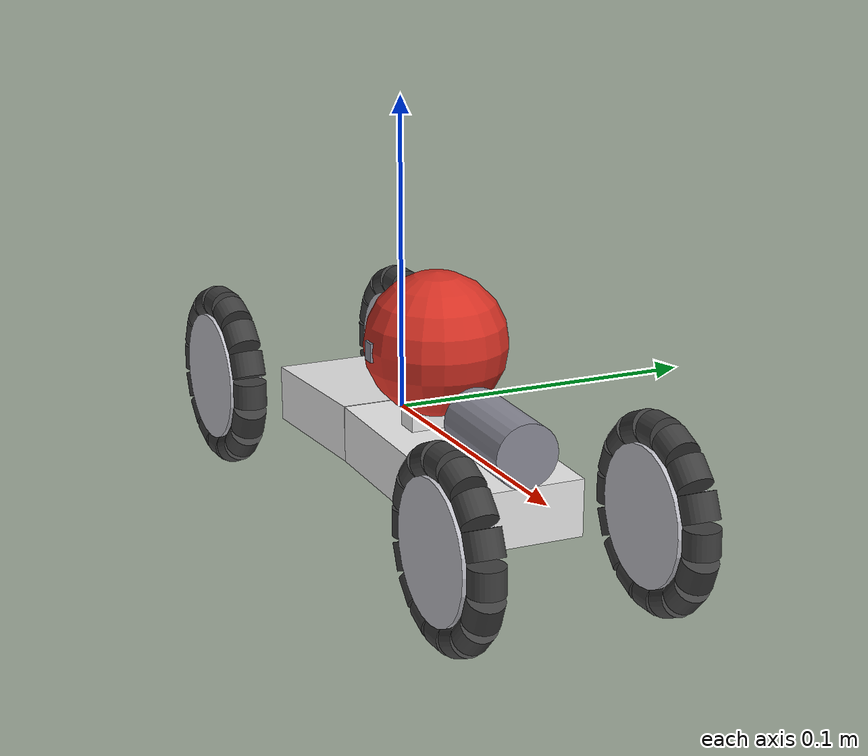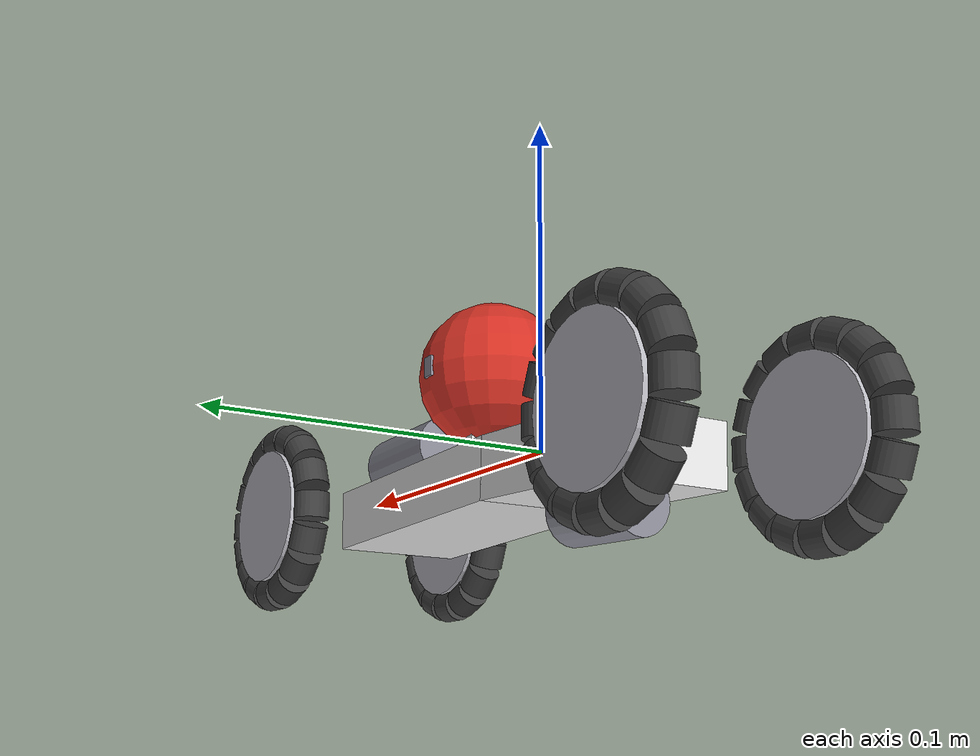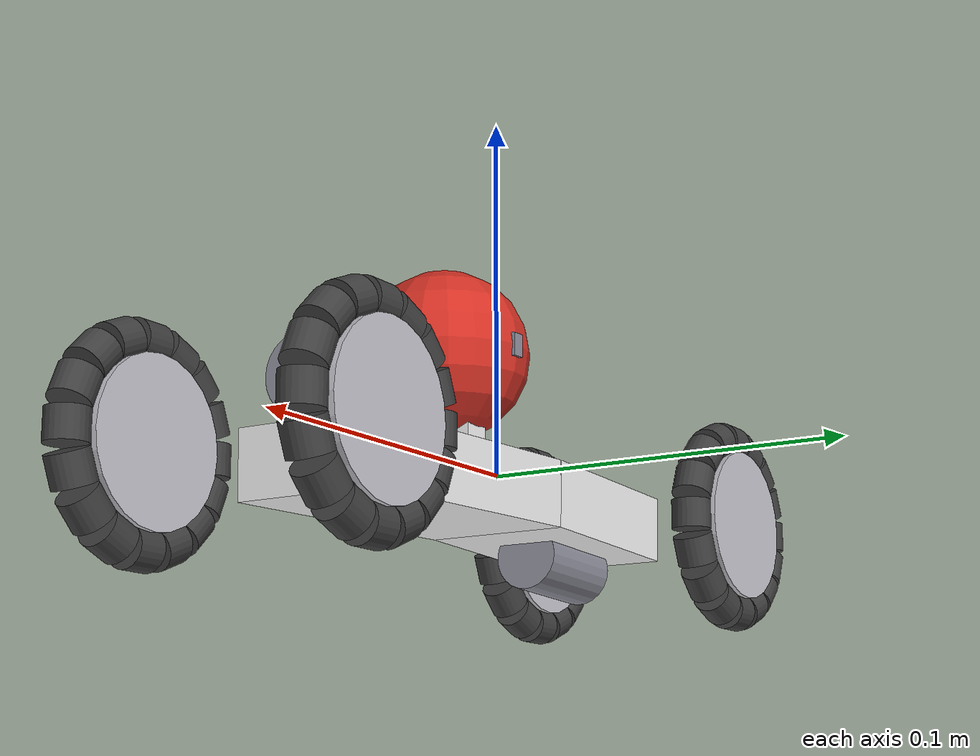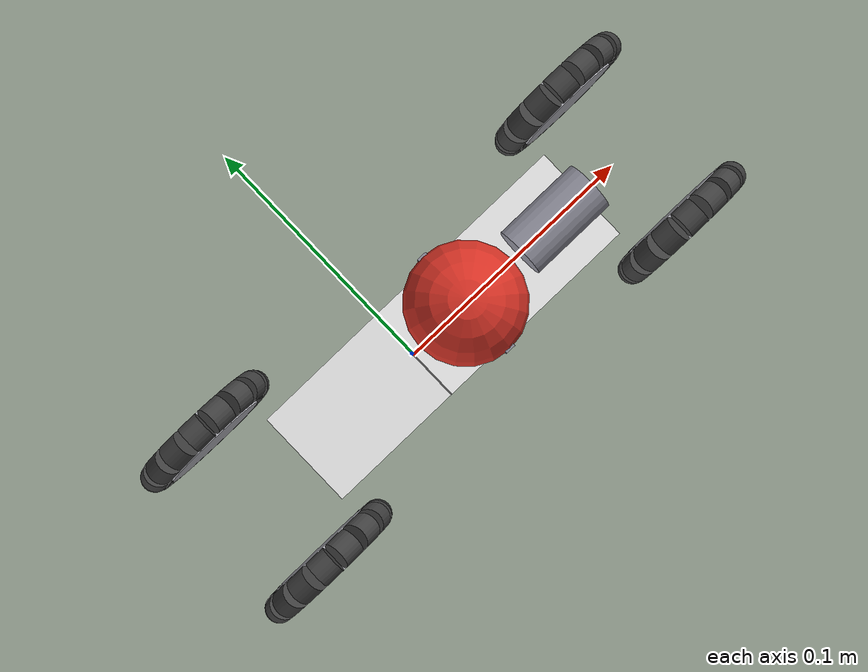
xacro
<?xml version="1.0"?>
<!-- V자형 100mm 로봇의 전륜 구동판: 모양은 vshape100 과 같고, 앞 옴니휠 2개만 구동 (뒤 2개는 자유 회전).
     제어는 robot.yaml 의 imu_assist (IMU 롤 유지 + 자이로 기반 좌우 속도차) -->
<robot name="vshape100_fwd" xmlns:xacro="http://www.ros.org/wiki/xacro">
  <xacro:arg name="rear_drive" default="false"/>
  <xacro:include filename="$(find pipe_robot_sim)/models/vshape100/vshape100.urdf.xacro"/>
</robot>

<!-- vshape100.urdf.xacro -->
<robot name="vshape100" xmlns:xacro="http://www.ros.org/wiki/xacro">
  <xacro:arg name="pipe_inner_d" default="0.1008"/>
  <xacro:arg name="params_file" default=""/>
  <xacro:arg name="suspension" default="all"/>
  <!-- 뒤 옴니휠 구동 여부. false = 전륜 구동 (뒤 바퀴는 모터 없이 자유 회전). vshape100_fwd 가 false 로 씀 -->
  <xacro:arg name="rear_drive" default="true"/>
  <xacro:include filename="$(find pipe_robot_sim)/models/common/common.xacro"/>

  <!-- ===== 치수 ===== -->
  <xacro:property name="Rp" value="${$(arg pipe_inner_d)/2}"/>   <!-- 배관 내반경 -->
  <xacro:property name="L1" value="0.105"/>        <!-- 링크 1: O ~ 앞 옴니휠 축 (논문) -->
  <xacro:property name="L2" value="0.075"/>        <!-- 링크 2: O ~ 뒤 옴니휠 축 (논문) -->
  <xacro:property name="Ro" value="0.030"/>        <!-- 옴니휠 반경 (논문) -->
  <xacro:property name="Rs" value="0.0225"/>       <!-- 구형 바퀴 반경 (논문) -->
  <xacro:property name="Wo" value="0.066"/>        <!-- 좌우 옴니휠 중심 간격. 추정: 논문 Fig.4a 비율 Wo/Dp = 0.66 -->
  <xacro:property name="o_w" value="0.014"/>       <!-- 옴니휠 폭. 추정 -->
  <xacro:property name="o_row" value="0.0"/>       <!-- 롤러 두 줄 간격의 절반. 0 = 한 평면 (구 롤러로 둥근 둘레를 만들기 위함, common.xacro) -->
  <xacro:property name="o_rr" value="0.0055"/>     <!-- 롤러 반경. 추정 -->
  <xacro:property name="o_n" value="8"/>           <!-- 줄당 롤러 수 (2줄 = 16개). 실물(사진)은 약 10개지만 구 롤러 근사라 늘림 -->
  <xacro:property name="alpha1" value="${radians(1.6)}"/>   <!-- 링크 1 기울기 (논문 시제품 |α| ≈ 1.6°) -->
  <xacro:property name="ds" value="0.025"/>        <!-- O에서 링크 1 방향으로 구형 바퀴 중심까지. 추정: 사진 -->
  <xacro:property name="body_w" value="0.040"/>    <!-- 몸통 폭. 추정 -->
  <xacro:property name="body_h" value="0.018"/>    <!-- 몸통 높이. 추정 (구형 바퀴 아래에 들어가게) -->

  <!-- 스프링: 10.06 N·mm/deg = 0.5764 N·m/rad (논문). 자유 상태 각 -1.1 rad: 추정 (사진에서 두 링크가 약 29°, 39° 벌어짐) -->
  <xacro:property name="spring_k" value="0.5764"/>
  <xacro:property name="spring_ref" value="-1.1"/>

  <!-- 질량 (총 750 g, 논문). 배분은 추정 -->
  <xacro:property name="m1" value="0.24"/>         <!-- 링크 1: 굴림 모터, 회로 -->
  <xacro:property name="m2" value="0.134"/>         <!-- 링크 2: 추진 모터 -->
  <xacro:property name="m_hub" value="0.015"/>
  <xacro:property name="m_roller" value="0.004"/>
  <xacro:property name="m_sph" value="0.05"/>   <!-- + 허브 0.01 -->

  <xacro:property name="mu_omni" value="0.3"/>
  <xacro:property name="mu_sph" value="0.6"/>

  <!-- 구동: 바퀴 관절 감쇠 = 스톨 토크 / 무부하 속도 (robot.yaml 과 같게). 모터 사양 미기재 -> 추정 0.3 N·m / 10 rad/s -->
  <xacro:property name="wheel_damping" value="${0.3/10.0}"/>
  <xacro:property name="rear_damping" value="${wheel_damping}"/>
  <!-- 굴림 모터 (구형 바퀴): 스톨 0.15 N·m / 무부하 15 rad/s 추정 -> 감쇠 0.01 (속도 상한 역할) -->
  <xacro:property name="roll_damping" value="${0.15/15.0}"/>
  <xacro:unless value="$(arg rear_drive)">
    <xacro:property name="rear_damping" value="0.001"/>   <!-- 모터 없는 바퀴: 베어링 마찰 정도 -->
  </xacro:unless>

  <xacro:property name="yc" value="${Wo/2 + o_row}"/>
  <xacro:property name="zw" value="${-sqrt((Rp - o_rr)*(Rp - o_rr) - yc*yc) + (Ro - o_rr)}"/>
  <xacro:property name="zO" value="${zw + L1*sin(alpha1)}"/>
  <xacro:property name="alpha2" value="${asin(L1*sin(alpha1)/L2)}"/>
  <xacro:property name="zs" value="${Rp - Rs}"/>
  <xacro:property name="e_off" value="${(zs - zO + ds*sin(alpha1))/cos(alpha1)}"/>
  <xacro:property name="xs" value="${ds*cos(alpha1) + e_off*sin(alpha1)}"/>

  <!-- ===== 링크 1 (base_link) ===== -->
  <xacro:property name="l1b" value="${L1 - 0.02}"/>
  <link name="base_link">
    <!-- 몸통: O에서 앞 바퀴 쪽으로, 구형 바퀴 밑으로 지나가게 링크 선보다 3.5 mm 아래 -->
    <visual>
      <origin xyz="${l1b/2*cos(alpha1) - 0.0035*sin(alpha1)} 0 ${zO - l1b/2*sin(alpha1) - 0.0035*cos(alpha1)}" rpy="0 ${alpha1} 0"/>
      <geometry><box size="${l1b} ${body_w} ${body_h}"/></geometry>
      <material name="body_white"><color rgba="0.92 0.92 0.92 1"/></material>
    </visual>
    <collision>
      <origin xyz="${l1b/2*cos(alpha1) - 0.0035*sin(alpha1)} 0 ${zO - l1b/2*sin(alpha1) - 0.0035*cos(alpha1)}" rpy="0 ${alpha1} 0"/>
      <geometry><box size="${l1b} ${body_w} ${body_h}"/></geometry>
    </collision>
    <!-- 굴림 모터 (링크 1 방향, 몸통 위 앞쪽) -->
    <visual>
      <origin xyz="${0.07*cos(alpha1) + 0.016*sin(alpha1)} 0 ${zO - 0.07*sin(alpha1) + 0.016*cos(alpha1)}" rpy="0 ${pi/2 + alpha1} 0"/>
      <geometry><cylinder radius="0.010" length="0.035"/></geometry>
      <material name="motor_grey"><color rgba="0.55 0.55 0.6 1"/></material>
    </visual>
    <!-- 구형 바퀴 브래킷 -->
    <visual>
      <origin xyz="${xs} 0 ${(zO + zs)/2}" rpy="0 0 0"/>
      <geometry><box size="0.008 0.020 ${zs - zO}"/></geometry>
      <material name="body_white"/>
    </visual>
    <xacro:inertial_box m="${m1}" x="${l1b}" y="${body_w}" z="${body_h}"
                        xyz="${l1b/2*cos(alpha1)} 0 ${zO - l1b/2*sin(alpha1)}" rpy="0 ${alpha1} 0"/>
  </link>

  <!-- 구형 바퀴: 링크 1 방향 축 (굴림 모터, 구동) -> 허브 -> 진행 방향 자유 축 -> 바퀴 -->
  <joint name="roll_wheel_joint" type="continuous">
    <parent link="base_link"/>
    <child link="roll_hub"/>
    <origin xyz="${xs} 0 ${zs}" rpy="0 ${alpha1} 0"/>
    <axis xyz="1 0 0"/>
    <dynamics damping="${roll_damping}" friction="0"/>
  </joint>
  <link name="roll_hub">
    <xacro:inertial_sphere m="0.01" r="0.008"/>
  </link>
  <joint name="roll_free_joint" type="continuous">
    <parent link="roll_hub"/>
    <child link="roll_wheel"/>
    <origin xyz="0 0 0" rpy="0 0 0"/>
    <axis xyz="0 1 0"/>
    <dynamics damping="0.0005" friction="0"/>
  </joint>
  <link name="roll_wheel">
    <visual>
      <geometry><sphere radius="${Rs}"/></geometry>
      <material name="ball_red"><color rgba="0.85 0.2 0.15 1"/></material>
    </visual>
    <!-- 굴림이 보이게 하는 표시 띠 -->
    <visual>
      <geometry><box size="0.004 ${2*Rs*1.01} 0.006"/></geometry>
      <material name="motor_grey"/>
    </visual>
    <collision>
      <geometry><sphere radius="${Rs}"/></geometry>
    </collision>
    <xacro:inertial_sphere m="${m_sph}" r="${Rs}"/>
  </link>
  <xacro:friction link="roll_wheel" mu="${mu_sph}"/>

  <!-- 앞 옴니휠 쌍 -->
  <xacro:omni_wheel name="front_left_omni" parent="base_link" xyz="${L1*cos(alpha1)} ${Wo/2} ${zw}"
                    R="${Ro}" width="${o_w}" n="${o_n}" rr="${o_rr}" row="${o_row}"
                    hub_mass="${m_hub}" roller_mass="${m_roller}" mu="${mu_omni}" damping="${wheel_damping}"/>
  <xacro:omni_wheel name="front_right_omni" parent="base_link" xyz="${L1*cos(alpha1)} ${-Wo/2} ${zw}"
                    R="${Ro}" width="${o_w}" n="${o_n}" rr="${o_rr}" row="${o_row}"
                    hub_mass="${m_hub}" roller_mass="${m_roller}" mu="${mu_omni}" damping="${wheel_damping}"/>

  <!-- ===== V 관절 (토션 스프링) =====
       q > 0: 뒤 바퀴가 올라감 (V가 펴지다 반대로 꺾임), q < 0: V가 벌어짐. 스프링은 q = spring_ref 쪽으로 벌림 -->
  <joint name="v_joint" type="revolute">
    <parent link="base_link"/>
    <child link="link2"/>
    <origin xyz="0 0 ${zO}" rpy="0 0 0"/>
    <axis xyz="0 1 0"/>
    <limit lower="-1.15" upper="0.8" effort="5.0" velocity="10.0"/>
    <dynamics damping="0.01" friction="0"/>
  </joint>
  <xacro:joint_spring joint="v_joint" k="${spring_k}" ref="${spring_ref}"/>

  <!-- ===== 링크 2 ===== -->
  <xacro:property name="l2b" value="${L2 - 0.02}"/>
  <link name="link2">
    <visual>
      <origin xyz="${-l2b/2*cos(alpha2)} 0 ${-l2b/2*sin(alpha2) - 0.0035}" rpy="0 ${-alpha2} 0"/>
      <geometry><box size="${l2b} ${body_w} ${body_h}"/></geometry>
      <material name="body_white"/>
    </visual>
    <collision>
      <origin xyz="${-l2b/2*cos(alpha2)} 0 ${-l2b/2*sin(alpha2) - 0.0035}" rpy="0 ${-alpha2} 0"/>
      <geometry><box size="${l2b} ${body_w} ${body_h}"/></geometry>
    </collision>
    <!-- 추진 모터 (몸통 아래) -->
    <visual>
      <origin xyz="-0.030 0 ${-0.030*sin(alpha2) - 0.016}" rpy="0 ${pi/2 - alpha2} 0"/>
      <geometry><cylinder radius="0.009" length="0.030"/></geometry>
      <material name="motor_grey"/>
    </visual>
    <xacro:inertial_box m="${m2}" x="${l2b}" y="${body_w}" z="${body_h}"
                        xyz="${-l2b/2*cos(alpha2)} 0 ${-l2b/2*sin(alpha2)}" rpy="0 ${-alpha2} 0"/>
  </link>

  <!-- 뒤 옴니휠 쌍 -->
  <xacro:omni_wheel name="rear_left_omni" parent="link2" xyz="${-L2*cos(alpha2)} ${Wo/2} ${zw - zO}"
                    R="${Ro}" width="${o_w}" n="${o_n}" rr="${o_rr}" row="${o_row}"
                    hub_mass="${m_hub}" roller_mass="${m_roller}" mu="${mu_omni}" damping="${rear_damping}"/>
  <xacro:omni_wheel name="rear_right_omni" parent="link2" xyz="${-L2*cos(alpha2)} ${-Wo/2} ${zw - zO}"
                    R="${Ro}" width="${o_w}" n="${o_n}" rr="${o_rr}" row="${o_row}"
                    hub_mass="${m_hub}" roller_mass="${m_roller}" mu="${mu_omni}" damping="${rear_damping}"/>

  <!-- ===== 시뮬 플러그인 ===== -->
  <xacro:sim_common imu_parent="base_link" imu_xyz="0.05 0 0"/>
  <xacro:joint_force joint="front_left_omni_joint"/>
  <xacro:joint_force joint="front_right_omni_joint"/>
  <xacro:if value="$(arg rear_drive)">
    <xacro:joint_force joint="rear_left_omni_joint"/>
    <xacro:joint_force joint="rear_right_omni_joint"/>
  </xacro:if>
  <xacro:joint_force joint="roll_wheel_joint"/>
</robot>

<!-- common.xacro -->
<!-- 모델 공통 매크로: 관성, 옴니휠(롤러), 시뮬 플러그인 (docs/02 규약)
     단위 m, kg, rad. 함수는 sin, cos, asin, atan2, sqrt, radians, pi 만 씀 (VS Code URDF Visualizer와 xacro 둘 다 지원) -->
<robot xmlns:xacro="http://www.ros.org/wiki/xacro">

  <!-- ===== 관성 (아주 작은 값은 1e-8을 더해 0이 되지 않게) ===== -->
  <xacro:macro name="inertial_box" params="m x y z xyz:='0 0 0' rpy:='0 0 0'">
    <inertial>
      <origin xyz="${xyz}" rpy="${rpy}"/>
      <mass value="${m}"/>
      <inertia ixx="${m*(y*y+z*z)/12 + 1e-8}" ixy="0" ixz="0" iyy="${m*(x*x+z*z)/12 + 1e-8}" iyz="0"
               izz="${m*(x*x+y*y)/12 + 1e-8}"/>
    </inertial>
  </xacro:macro>

  <!-- 원기둥: 축은 origin 회전 후의 z -->
  <xacro:macro name="inertial_cyl" params="m r l xyz:='0 0 0' rpy:='0 0 0'">
    <inertial>
      <origin xyz="${xyz}" rpy="${rpy}"/>
      <mass value="${m}"/>
      <inertia ixx="${m*(3*r*r+l*l)/12 + 1e-8}" ixy="0" ixz="0" iyy="${m*(3*r*r+l*l)/12 + 1e-8}" iyz="0"
               izz="${m*r*r/2 + 1e-8}"/>
    </inertial>
  </xacro:macro>

  <xacro:macro name="inertial_sphere" params="m r xyz:='0 0 0'">
    <inertial>
      <origin xyz="${xyz}" rpy="0 0 0"/>
      <mass value="${m}"/>
      <inertia ixx="${0.4*m*r*r + 1e-8}" ixy="0" ixz="0" iyy="${0.4*m*r*r + 1e-8}" iyz="0" izz="${0.4*m*r*r + 1e-8}"/>
    </inertial>
  </xacro:macro>

  <xacro:macro name="omni_wheel" params="name parent xyz R width n rr row hub_mass roller_mass mu damping">
    <joint name="${name}_joint" type="continuous">
      <parent link="${parent}"/>
      <child link="${name}"/>
      <origin xyz="${xyz}" rpy="0 0 0"/>
      <axis xyz="0 1 0"/>
      <dynamics damping="${damping}" friction="0"/>
    </joint>
    <link name="${name}">
      <visual>
        <origin xyz="0 0 0" rpy="${pi/2} 0 0"/>
        <geometry><cylinder radius="${R - 1.6*rr}" length="${width*0.8}"/></geometry>
        <material name="omni_hub"><color rgba="0.75 0.75 0.78 1"/></material>
      </visual>
      <xacro:inertial_cyl m="${hub_mass}" r="${R - rr}" l="${width}" rpy="${pi/2} 0 0"/>
    </link>
    <xacro:omni_rollers hub="${name}" n="${n}" i="0" R="${R}" rr="${rr}" y="${-row}" phase="0"
                        m="${roller_mass}" mu="${mu}" tag="a"/>
    <xacro:omni_rollers hub="${name}" n="${n}" i="0" R="${R}" rr="${rr}" y="${row}" phase="${pi/n}"
                        m="${roller_mass}" mu="${mu}" tag="b"/>
  </xacro:macro>

  <!-- 롤러 한 줄 (재귀). 롤러 중심은 허브 중심에서 R-rr, 축은 접선 (-sin, 0, cos) -->
  <xacro:macro name="omni_rollers" params="hub n i R rr y phase m mu tag">
    <xacro:if value="${i &lt; n}">
      <joint name="${hub}_${tag}${i}_joint" type="continuous">
        <parent link="${hub}"/>
        <child link="${hub}_${tag}${i}"/>
        <origin xyz="${(R-rr)*cos(2*pi*i/n + phase)} ${y} ${(R-rr)*sin(2*pi*i/n + phase)}" rpy="0 0 0"/>
        <axis xyz="${-sin(2*pi*i/n + phase)} 0 ${cos(2*pi*i/n + phase)}"/>
        <dynamics damping="0.00001" friction="0"/>
      </joint>
      <link name="${hub}_${tag}${i}">
        <visual>
          <origin xyz="0 0 0" rpy="0 ${-(2*pi*i/n + phase)} 0"/>
          <geometry><cylinder radius="${rr}" length="${1.5*rr}"/></geometry>
          <material name="omni_roller"><color rgba="0.25 0.25 0.25 1"/></material>
        </visual>
        <collision>
          <geometry><sphere radius="${rr}"/></geometry>
        </collision>
        <xacro:inertial_sphere m="${m}" r="${rr}"/>
      </link>
      <gazebo reference="${hub}_${tag}${i}">
        <mu1>${mu}</mu1>
        <mu2>${mu}</mu2>
      </gazebo>
      <xacro:omni_rollers hub="${hub}" n="${n}" i="${i+1}" R="${R}" rr="${rr}" y="${y}" phase="${phase}"
                          m="${m}" mu="${mu}" tag="${tag}"/>
    </xacro:if>
  </xacro:macro>

  <!-- ===== 시뮬 플러그인 (docs/02 규약) ===== -->

  <!-- 관절 상태, 정답 위치, IMU (imu_link 를 parent 에 고정) -->
  <xacro:macro name="sim_common" params="imu_parent imu_xyz:='0 0 0'">
    <joint name="imu_joint" type="fixed">
      <parent link="${imu_parent}"/>
      <child link="imu_link"/>
      <origin xyz="${imu_xyz}" rpy="0 0 0"/>
    </joint>
    <link name="imu_link"/>
    <gazebo reference="imu_link">
      <sensor name="imu" type="imu">
        <always_on>1</always_on>
        <update_rate>200</update_rate>
        <topic>/imu</topic>
        <imu>
          <!-- MPU6050 수준 노이즈 (docs/08) -->
          <angular_velocity>
            <x><noise type="gaussian"><mean>0</mean><stddev>0.0012</stddev></noise></x>
            <y><noise type="gaussian"><mean>0</mean><stddev>0.0012</stddev></noise></y>
            <z><noise type="gaussian"><mean>0</mean><stddev>0.0012</stddev></noise></z>
          </angular_velocity>
          <linear_acceleration>
            <x><noise type="gaussian"><mean>0</mean><stddev>0.055</stddev></noise></x>
            <y><noise type="gaussian"><mean>0</mean><stddev>0.055</stddev></noise></y>
            <z><noise type="gaussian"><mean>0</mean><stddev>0.055</stddev></noise></z>
          </linear_acceleration>
        </imu>
      </sensor>
    </gazebo>
    <gazebo>
      <plugin filename="ignition-gazebo-joint-state-publisher-system"
              name="ignition::gazebo::systems::JointStatePublisher">
        <topic>/joint_states</topic>
      </plugin>
      <plugin filename="ignition-gazebo-odometry-publisher-system"
              name="ignition::gazebo::systems::OdometryPublisher">
        <odom_frame>world</odom_frame>
        <robot_base_frame>base_link</robot_base_frame>
        <odom_topic>/ground_truth/odom</odom_topic>
        <odom_publish_frequency>100</odom_publish_frequency>
        <dimensions>3</dimensions>
      </plugin>
    </gazebo>
  </xacro:macro>

  <xacro:macro name="joint_force" params="joint">
    <gazebo>
      <plugin filename="ignition-gazebo-apply-joint-force-system"
              name="ignition::gazebo::systems::ApplyJointForce">
        <joint_name>${joint}</joint_name>
      </plugin>
    </gazebo>
  </xacro:macro>

  <xacro:macro name="joint_servo" params="joint p d tmax">
    <gazebo>
      <plugin filename="ignition-gazebo-joint-position-controller-system"
              name="ignition::gazebo::systems::JointPositionController">
        <joint_name>${joint}</joint_name>
        <topic>/servo/${joint}</topic>
        <p_gain>${p}</p_gain>
        <i_gain>0</i_gain>
        <d_gain>${d}</d_gain>
        <cmd_max>${tmax}</cmd_max>
        <cmd_min>${-tmax}</cmd_min>
      </plugin>
    </gazebo>
  </xacro:macro>

  <!-- 토션 스프링 관절: 토크 = -k (q - ref) -->
  <xacro:macro name="joint_spring" params="joint k ref">
    <gazebo reference="${joint}">
      <springReference>${ref}</springReference>
      <springStiffness>${k}</springStiffness>
      <implicitSpringDamper>true</implicitSpringDamper>
    </gazebo>
  </xacro:macro>

  <xacro:macro name="friction" params="link mu">
    <gazebo reference="${link}">
      <mu1>${mu}</mu1>
      <mu2>${mu}</mu2>
    </gazebo>
  </xacro:macro>

</robot>
